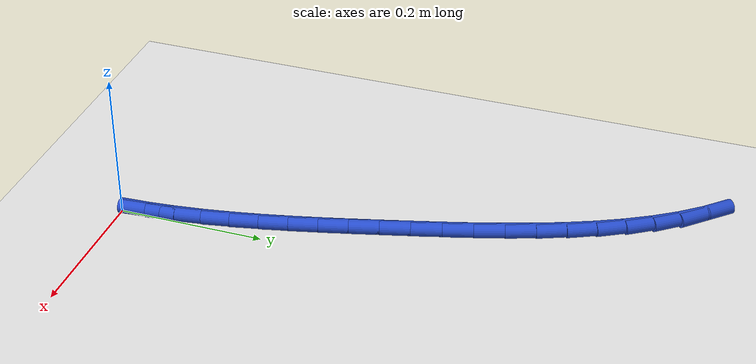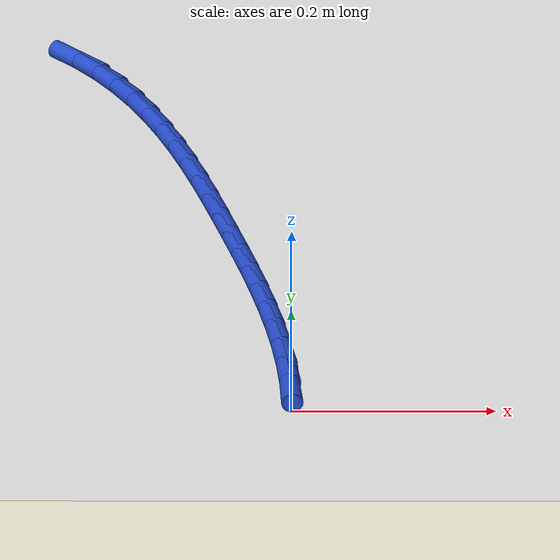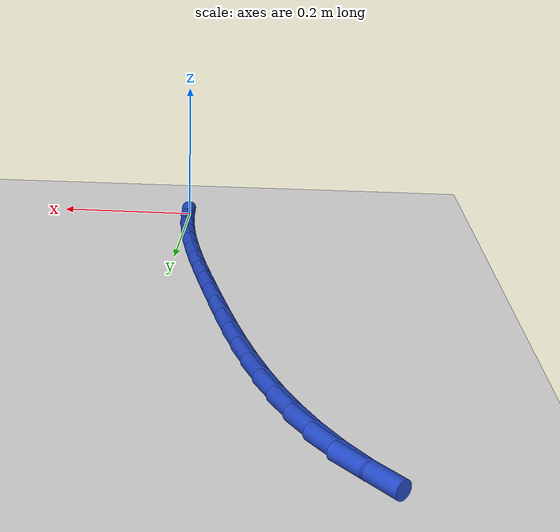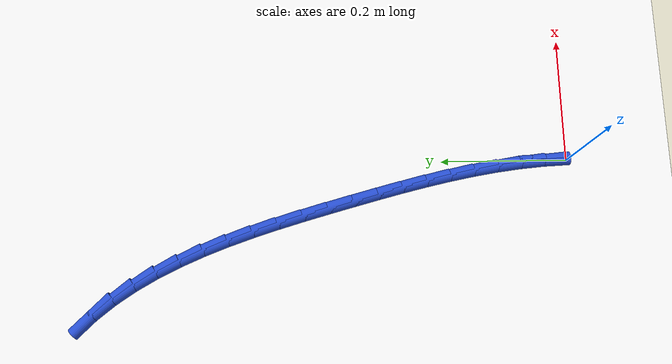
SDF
<sdf version="1.6">
 <world name="default">
  <model name="ground_plane">
   <static>1</static>
   <link name="link">
    <collision name="collision">
     <geometry><plane><normal>0 0 1</normal><size>100 100</size></plane></geometry>
     <surface><friction><ode><mu>100</mu><mu2>50</mu2></ode></friction></surface>
    </collision>
    <visual name="visual">
     <cast_shadows>0</cast_shadows>
     <geometry><plane><normal>0 0 1</normal><size>100 100</size></plane></geometry>
     <material>
      <script><uri>file://media/materials/scripts/gazebo.material</uri><name>Gazebo/WhiteGlow</name></script>
     </material>
    </visual>
   </link>
  </model>
  <model name="line">
   <link name="link_1">
    <pose>-0.0018524570608584854 0.0382594851531359 0.01 0 1.57 -1.4786715318647181</pose>
    <collision name="collision">
     <geometry><cylinder><radius>0.01</radius><length>0.08</length></cylinder></geometry>
    </collision>
    <visual name="visual">
     <material>
      <script><name>Gazebo/Blue</name><uri>file://media/materials/scripts/gazebo.material</uri></script>
     </material>
     <geometry><cylinder><radius>0.01</radius><length>0.08</length></cylinder></geometry>
    </visual>
   </link>
   <link name="link_2">
    <pose>-0.0053661504700810905 0.07629210786311716 0.01 0 1.57 -1.4393598620121903</pose>
    <collision name="collision">
     <geometry><cylinder><radius>0.01</radius><length>0.08</length></cylinder></geometry>
    </collision>
    <visual name="visual">
     <material>
      <script><name>Gazebo/Blue</name><uri>file://media/materials/scripts/gazebo.material</uri></script>
     </material>
     <geometry><cylinder><radius>0.01</radius><length>0.08</length></cylinder></geometry>
    </visual>
   </link>
   <link name="link_3">
    <pose>-0.010374809730890841 0.11417948986248341 0.01 0 1.57 -1.4047887472843967</pose>
    <collision name="collision">
     <geometry><cylinder><radius>0.01</radius><length>0.08</length></cylinder></geometry>
    </collision>
    <visual name="visual">
     <material>
      <script><name>Gazebo/Blue</name><uri>file://media/materials/scripts/gazebo.material</uri></script>
     </material>
     <geometry><cylinder><radius>0.01</radius><length>0.08</length></cylinder></geometry>
    </visual>
   </link>
   <link name="link_4">
    <pose>-0.016712164346510815 0.15200325288377434 0.01 0 1.57 -1.3751437921391525</pose>
    <collision name="collision">
     <geometry><cylinder><radius>0.01</radius><length>0.08</length></cylinder></geometry>
    </collision>
    <visual name="visual">
     <material>
      <script><name>Gazebo/Blue</name><uri>file://media/materials/scripts/gazebo.material</uri></script>
     </material>
     <geometry><cylinder><radius>0.01</radius><length>0.08</length></cylinder></geometry>
    </visual>
   </link>
   <link name="link_5">
    <pose>-0.024211943820164058 0.18984501865952952 0.01 0 1.57 -1.3505076286854965</pose>
    <collision name="collision">
     <geometry><cylinder><radius>0.01</radius><length>0.08</length></cylinder></geometry>
    </collision>
    <visual name="visual">
     <material>
      <script><name>Gazebo/Blue</name><uri>file://media/materials/scripts/gazebo.material</uri></script>
     </material>
     <geometry><cylinder><radius>0.01</radius><length>0.08</length></cylinder></geometry>
    </visual>
   </link>
   <link name="link_6">
    <pose>-0.0327078776550736 0.22778640892228855 0.01 0 1.57 -1.3308811730916426</pose>
    <collision name="collision">
     <geometry><cylinder><radius>0.01</radius><length>0.08</length></cylinder></geometry>
    </collision>
    <visual name="visual">
     <material>
      <script><name>Gazebo/Blue</name><uri>file://media/materials/scripts/gazebo.material</uri></script>
     </material>
     <geometry><cylinder><radius>0.01</radius><length>0.08</length></cylinder></geometry>
    </visual>
   </link>
   <link name="link_7">
    <pose>-0.04203369535446252 0.26590904540459104 0.01 0 1.57 -1.3162037856840971</pose>
    <collision name="collision">
     <geometry><cylinder><radius>0.01</radius><length>0.08</length></cylinder></geometry>
    </collision>
    <visual name="visual">
     <material>
      <script><name>Gazebo/Blue</name><uri>file://media/materials/scripts/gazebo.material</uri></script>
     </material>
     <geometry><cylinder><radius>0.01</radius><length>0.08</length></cylinder></geometry>
    </visual>
   </link>
   <link name="link_8">
    <pose>-0.05202312642155387 0.3042945498389767 0.01 0 1.57 -1.3063704763379724</pose>
    <collision name="collision">
     <geometry><cylinder><radius>0.01</radius><length>0.08</length></cylinder></geometry>
    </collision>
    <visual name="visual">
     <material>
      <script><name>Gazebo/Blue</name><uri>file://media/materials/scripts/gazebo.material</uri></script>
     </material>
     <geometry><cylinder><radius>0.01</radius><length>0.08</length></cylinder></geometry>
    </visual>
   </link>
   <link name="link_9">
    <pose>-0.0625099003595707 0.34302454395798515 0.01 0 1.57 -1.3009679392505522</pose>
    <collision name="collision">
     <geometry><cylinder><radius>0.01</radius><length>0.08</length></cylinder></geometry>
    </collision>
    <visual name="visual">
     <material>
      <script><name>Gazebo/Blue</name><uri>file://media/materials/scripts/gazebo.material</uri></script>
     </material>
     <geometry><cylinder><radius>0.01</radius><length>0.08</length></cylinder></geometry>
    </visual>
   </link>
   <link name="link_10">
    <pose>-0.0733368270392069 0.3821712123215931 0.01 0 1.57 -1.2944133006836243</pose>
    <collision name="collision">
     <geometry><cylinder><radius>0.01</radius><length>0.08</length></cylinder></geometry>
    </collision>
    <visual name="visual">
     <material>
      <script><name>Gazebo/Blue</name><uri>file://media/materials/scripts/gazebo.material</uri></script>
     </material>
     <geometry><cylinder><radius>0.01</radius><length>0.08</length></cylinder></geometry>
    </visual>
   </link>
   <link name="link_11">
    <pose>-0.08452622357509605 0.42162017866580087 0.01 0 1.57 -1.2816888618524753</pose>
    <collision name="collision">
     <geometry><cylinder><radius>0.01</radius><length>0.08</length></cylinder></geometry>
    </collision>
    <visual name="visual">
     <material>
      <script><name>Gazebo/Blue</name><uri>file://media/materials/scripts/gazebo.material</uri></script>
     </material>
     <geometry><cylinder><radius>0.01</radius><length>0.08</length></cylinder></geometry>
    </visual>
   </link>
   <link name="link_12">
    <pose>-0.09626498470366092 0.46108602217121886 0.01 0 1.57 -1.2624828384372422</pose>
    <collision name="collision">
     <geometry><cylinder><radius>0.01</radius><length>0.08</length></cylinder></geometry>
    </collision>
    <visual name="visual">
     <material>
      <script><name>Gazebo/Blue</name><uri>file://media/materials/scripts/gazebo.material</uri></script>
     </material>
     <geometry><cylinder><radius>0.01</radius><length>0.08</length></cylinder></geometry>
    </visual>
   </link>
   <link name="link_13">
    <pose>-0.10874609254493098 0.5002769954364393 0.01 0 1.57 -1.2364780944276674</pose>
    <collision name="collision">
     <geometry><cylinder><radius>0.01</radius><length>0.08</length></cylinder></geometry>
    </collision>
    <visual name="visual">
     <material>
      <script><name>Gazebo/Blue</name><uri>file://media/materials/scripts/gazebo.material</uri></script>
     </material>
     <geometry><cylinder><radius>0.01</radius><length>0.08</length></cylinder></geometry>
    </visual>
   </link>
   <link name="link_14">
    <pose>-0.12216252921893576 0.5389013510600548 0.01 0 1.57 -1.2031758468182105</pose>
    <collision name="collision">
     <geometry><cylinder><radius>0.01</radius><length>0.08</length></cylinder></geometry>
    </collision>
    <visual name="visual">
     <material>
      <script><name>Gazebo/Blue</name><uri>file://media/materials/scripts/gazebo.material</uri></script>
     </material>
     <geometry><cylinder><radius>0.01</radius><length>0.08</length></cylinder></geometry>
    </visual>
   </link>
   <link name="link_15">
    <pose>-0.13670727684570488 0.5766673416406576 0.01 0 1.57 -1.1619078081145913</pose>
    <collision name="collision">
     <geometry><cylinder><radius>0.01</radius><length>0.08</length></cylinder></geometry>
    </collision>
    <visual name="visual">
     <material>
      <script><name>Gazebo/Blue</name><uri>file://media/materials/scripts/gazebo.material</uri></script>
     </material>
     <geometry><cylinder><radius>0.01</radius><length>0.08</length></cylinder></geometry>
    </visual>
   </link>
   <link name="link_16">
    <pose>-0.15257331754526787 0.6132832197768407 0.01 0 1.57 -1.1118608027056225</pose>
    <collision name="collision">
     <geometry><cylinder><radius>0.01</radius><length>0.08</length></cylinder></geometry>
    </collision>
    <visual name="visual">
     <material>
      <script><name>Gazebo/Blue</name><uri>file://media/materials/scripts/gazebo.material</uri></script>
     </material>
     <geometry><cylinder><radius>0.01</radius><length>0.08</length></cylinder></geometry>
    </visual>
   </link>
   <link name="link_17">
    <pose>-0.16995363343765435 0.6484572380671964 0.01 0 1.57 -1.0521290007023256</pose>
    <collision name="collision">
     <geometry><cylinder><radius>0.01</radius><length>0.08</length></cylinder></geometry>
    </collision>
    <visual name="visual">
     <material>
      <script><name>Gazebo/Blue</name><uri>file://media/materials/scripts/gazebo.material</uri></script>
     </material>
     <geometry><cylinder><radius>0.01</radius><length>0.08</length></cylinder></geometry>
    </visual>
   </link>
   <link name="link_18">
    <pose>-0.1890412066428937 0.6818976491103167 0.01 0 1.57 -0.9818149807332603</pose>
    <collision name="collision">
     <geometry><cylinder><radius>0.01</radius><length>0.08</length></cylinder></geometry>
    </collision>
    <visual name="visual">
     <material>
      <script><name>Gazebo/Blue</name><uri>file://media/materials/scripts/gazebo.material</uri></script>
     </material>
     <geometry><cylinder><radius>0.01</radius><length>0.08</length></cylinder></geometry>
    </visual>
   </link>
   <link name="link_19">
    <pose>-0.21002901928101553 0.7133127055047943 0.01 0 1.57 -0.9002041779196223</pose>
    <collision name="collision">
     <geometry><cylinder><radius>0.01</radius><length>0.08</length></cylinder></geometry>
    </collision>
    <visual name="visual">
     <material>
      <script><name>Gazebo/Blue</name><uri>file://media/materials/scripts/gazebo.material</uri></script>
     </material>
     <geometry><cylinder><radius>0.01</radius><length>0.08</length></cylinder></geometry>
    </visual>
   </link>
   <link name="link_20">
    <pose>-0.23311005347204955 0.7424106598492223 0.01 0 1.57 -0.8070289224112783</pose>
    <collision name="collision">
     <geometry><cylinder><radius>0.01</radius><length>0.08</length></cylinder></geometry>
    </collision>
    <visual name="visual">
     <material>
      <script><name>Gazebo/Blue</name><uri>file://media/materials/scripts/gazebo.material</uri></script>
     </material>
     <geometry><cylinder><radius>0.01</radius><length>0.08</length></cylinder></geometry>
    </visual>
   </link>
   <link name="link_171">
    <pose>-0.0018863133308155075 0.038226898995848184 0.01 0 1.57 -1.5214911362397856</pose>
    <collision name="collision">
     <geometry><cylinder><radius>0.01</radius><length>0.08</length></cylinder></geometry>
    </collision>
    <visual name="visual">
     <material>
      <script><name>Gazebo/Blue</name><uri>file://media/materials/scripts/gazebo.material</uri></script>
     </material>
     <geometry><cylinder><radius>0.01</radius><length>0.08</length></cylinder></geometry>
    </visual>
   </link>
  </model>
 </world>
</sdf>
